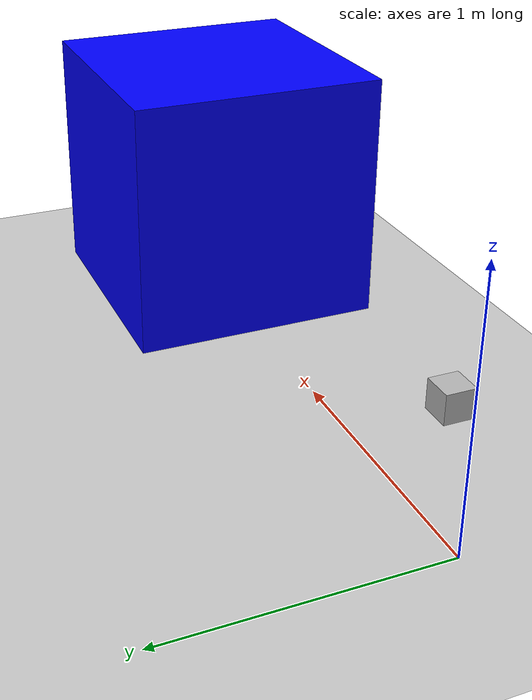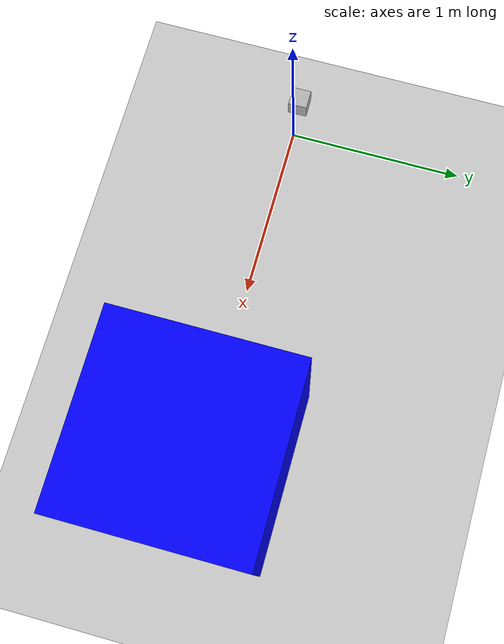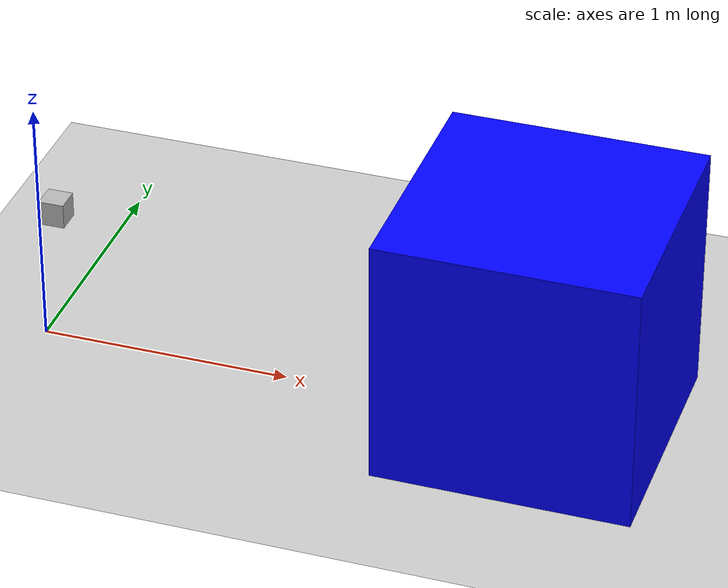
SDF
<?xml version="1.0" ?>
<sdf version="1.6">
  <world name="camera_test">
    <plugin filename="libignition-gazebo-physics-system.so" name="ignition::gazebo::systems::Physics"/>
    <plugin filename="libignition-gazebo-sensors-system.so" name="ignition::gazebo::systems::Sensors">
      <render_engine>ogre2</render_engine>
    </plugin>
    <plugin filename="libignition-gazebo-scene-broadcaster-system.so" name="ignition::gazebo::systems::SceneBroadcaster"/>

    <include><uri>https://fuel.gazebosim.org/1.0/OpenRobotics/models/Sun</uri></include>
    <include><uri>https://fuel.gazebosim.org/1.0/OpenRobotics/models/Ground Plane</uri></include>

    <model name="box">
      <pose>2 0 0.5 0 0 0</pose>
      <link name="link">
        <visual name="visual">
          <geometry><box><size>1 1 1</size></box></geometry>
          <material><ambient>0 0 1 1</ambient><diffuse>0 0 1 1</diffuse></material>
        </visual>
      </link>
    </model>

    <model name="camera_model">
      <pose>0 0 0.5 0 0 0</pose>
      <link name="link">
        <pose>0.05 0.05 0.05 0 0 0</pose>
        <inertial><mass>0.1</mass><inertia><ixx>0.000166667</ixx><iyy>0.000166667</iyy><izz>0.000166667</izz></inertia></inertial>
        <visual name="visual">
          <geometry><box><size>0.1 0.1 0.1</size></box></geometry>
        </visual>
        <sensor name="camera" type="camera">
          <camera>
            <horizontal_fov>1.047</horizontal_fov>
            <image><width>320</width><height>240</height></image>
            <clip><near>0.1</near><far>100</far></clip>
          </camera>
          <always_on>1</always_on>
          <update_rate>30</update_rate>
          <visualize>true</visualize>
          <topic>test_cam/image</topic>
        </sensor>
      </link>
    </model>
  </world>
</sdf>
